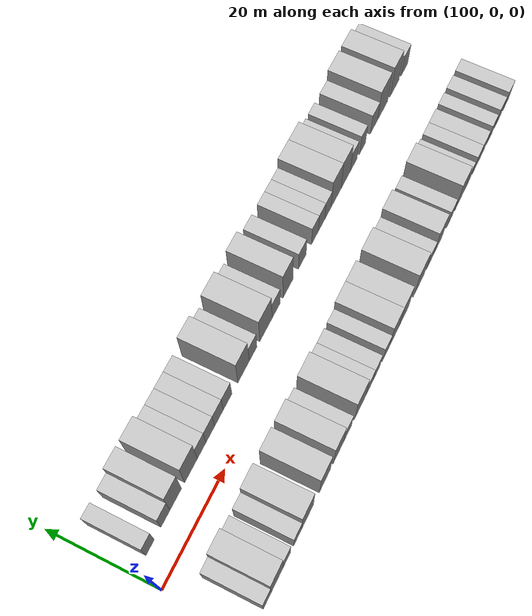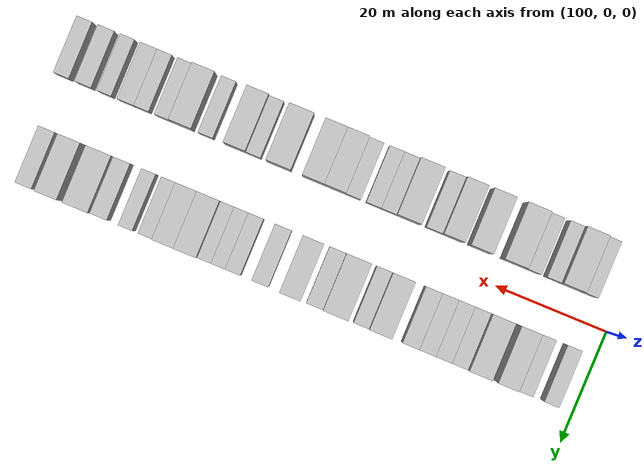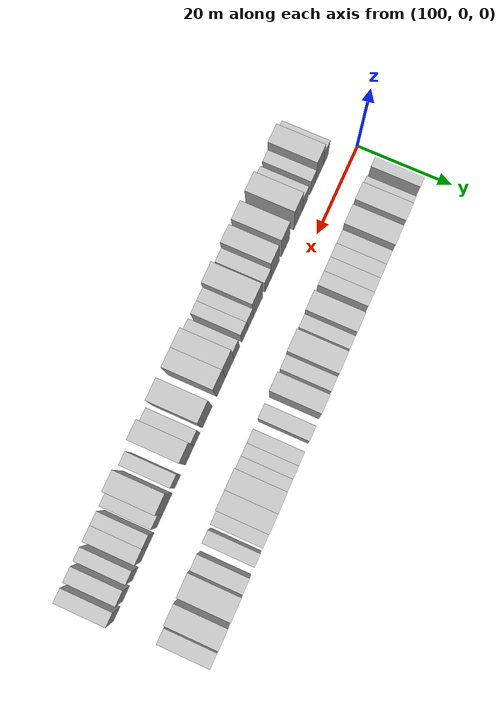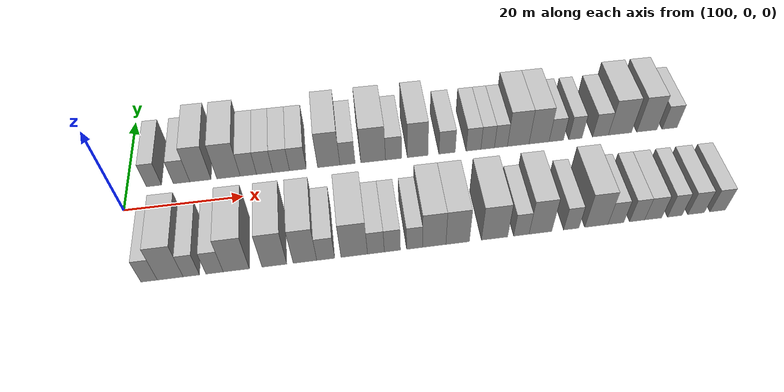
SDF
<sdf version="1.6">
 <world name="default">
  <model name="building_25">
   <static>1</static>
   <pose>104.6225 9.5000 0 0.000000 0.000000 1.570796</pose>
   <link name="link">
    <pose>0 0 3.00 0 0 0</pose>
    <collision name="collision"><geometry><box><size>10.0000 2.5924 6.0000</size></box></geometry></collision>
    <visual name="visual">
     <cast_shadows>0</cast_shadows>
     <geometry><box><size>10.0000 2.5924 6.0000</size></box></geometry>
     <material>
      <script>
       <uri>model://HANNAS_wall/materials/scripts</uri>
       <uri>model://HANNAS_wall/materials/textures</uri>
       <name>vrc/HANNAS_wall</name>
      </script>
     </material>
    </visual>
   </link>
  </model>
  <model name="building_26">
   <static>1</static>
   <pose>109.3335 9.5000 0 0.000000 0.000000 1.570796</pose>
   <link name="link">
    <pose>0 0 3.00 0 0 0</pose>
    <collision name="collision"><geometry><box><size>10.0000 2.8296 6.0000</size></box></geometry></collision>
    <visual name="visual">
     <cast_shadows>0</cast_shadows>
     <geometry><box><size>10.0000 2.8296 6.0000</size></box></geometry>
     <material>
      <script>
       <uri>model://HANNAS_wall/materials/scripts</uri>
       <uri>model://HANNAS_wall/materials/textures</uri>
       <name>vrc/HANNAS_wall</name>
      </script>
     </material>
    </visual>
   </link>
  </model>
  <model name="building_27">
   <static>1</static>
   <pose>112.5689 9.5000 0 0.000000 0.000000 1.570796</pose>
   <link name="link">
    <pose>0 0 4.50 0 0 0</pose>
    <collision name="collision"><geometry><box><size>10.0000 3.6413 9.0000</size></box></geometry></collision>
    <visual name="visual">
     <cast_shadows>0</cast_shadows>
     <geometry><box><size>10.0000 3.6413 9.0000</size></box></geometry>
     <material>
      <script>
       <uri>model://HANNAS_wall/materials/scripts</uri>
       <uri>model://HANNAS_wall/materials/textures</uri>
       <name>vrc/HANNAS_wall</name>
      </script>
     </material>
    </visual>
   </link>
  </model>
  <model name="building_28">
   <static>1</static>
   <pose>117.4091 9.5000 0 0.000000 0.000000 1.570796</pose>
   <link name="link">
    <pose>0 0 4.50 0 0 0</pose>
    <collision name="collision"><geometry><box><size>10.0000 4.0390 9.0000</size></box></geometry></collision>
    <visual name="visual">
     <cast_shadows>0</cast_shadows>
     <geometry><box><size>10.0000 4.0390 9.0000</size></box></geometry>
     <material>
      <script>
       <uri>model://HANNAS_wall/materials/scripts</uri>
       <uri>model://HANNAS_wall/materials/textures</uri>
       <name>vrc/HANNAS_wall</name>
      </script>
     </material>
    </visual>
   </link>
  </model>
  <model name="building_29">
   <static>1</static>
   <pose>120.8455 9.5000 0 0.000000 0.000000 1.570796</pose>
   <link name="link">
    <pose>0 0 3.00 0 0 0</pose>
    <collision name="collision"><geometry><box><size>10.0000 2.8339 6.0000</size></box></geometry></collision>
    <visual name="visual">
     <cast_shadows>0</cast_shadows>
     <geometry><box><size>10.0000 2.8339 6.0000</size></box></geometry>
     <material>
      <script>
       <uri>model://HANNAS_wall/materials/scripts</uri>
       <uri>model://HANNAS_wall/materials/textures</uri>
       <name>vrc/HANNAS_wall</name>
      </script>
     </material>
    </visual>
   </link>
  </model>
  <model name="building_30">
   <static>1</static>
   <pose>123.6905 9.5000 0 0.000000 0.000000 1.570796</pose>
   <link name="link">
    <pose>0 0 3.00 0 0 0</pose>
    <collision name="collision"><geometry><box><size>10.0000 2.8562 6.0000</size></box></geometry></collision>
    <visual name="visual">
     <cast_shadows>0</cast_shadows>
     <geometry><box><size>10.0000 2.8562 6.0000</size></box></geometry>
     <material>
      <script>
       <uri>model://HANNAS_wall/materials/scripts</uri>
       <uri>model://HANNAS_wall/materials/textures</uri>
       <name>vrc/HANNAS_wall</name>
      </script>
     </material>
    </visual>
   </link>
  </model>
  <model name="building_31">
   <static>1</static>
   <pose>126.5782 9.5000 0 0.000000 0.000000 1.570796</pose>
   <link name="link">
    <pose>0 0 3.00 0 0 0</pose>
    <collision name="collision"><geometry><box><size>10.0000 2.9191 6.0000</size></box></geometry></collision>
    <visual name="visual">
     <cast_shadows>0</cast_shadows>
     <geometry><box><size>10.0000 2.9191 6.0000</size></box></geometry>
     <material>
      <script>
       <uri>model://HANNAS_wall/materials/scripts</uri>
       <uri>model://HANNAS_wall/materials/textures</uri>
       <name>vrc/HANNAS_wall</name>
      </script>
     </material>
    </visual>
   </link>
  </model>
  <model name="building_32">
   <static>1</static>
   <pose>129.5099 9.5000 0 0.000000 0.000000 1.570796</pose>
   <link name="link">
    <pose>0 0 3.00 0 0 0</pose>
    <collision name="collision"><geometry><box><size>10.0000 2.9444 6.0000</size></box></geometry></collision>
    <visual name="visual">
     <cast_shadows>0</cast_shadows>
     <geometry><box><size>10.0000 2.9444 6.0000</size></box></geometry>
     <material>
      <script>
       <uri>model://HANNAS_wall/materials/scripts</uri>
       <uri>model://HANNAS_wall/materials/textures</uri>
       <name>vrc/HANNAS_wall</name>
      </script>
     </material>
    </visual>
   </link>
  </model>
  <model name="building_33">
   <static>1</static>
   <pose>134.9548 9.5000 0 0.000000 0.000000 1.570796</pose>
   <link name="link">
    <pose>0 0 4.50 0 0 0</pose>
    <collision name="collision"><geometry><box><size>10.0000 3.9455 9.0000</size></box></geometry></collision>
    <visual name="visual">
     <cast_shadows>0</cast_shadows>
     <geometry><box><size>10.0000 3.9455 9.0000</size></box></geometry>
     <material>
      <script>
       <uri>model://HANNAS_wall/materials/scripts</uri>
       <uri>model://HANNAS_wall/materials/textures</uri>
       <name>vrc/HANNAS_wall</name>
      </script>
     </material>
    </visual>
   </link>
  </model>
  <model name="building_34">
   <static>1</static>
   <pose>138.2891 9.5000 0 0.000000 0.000000 1.570796</pose>
   <link name="link">
    <pose>0 0 3.00 0 0 0</pose>
    <collision name="collision"><geometry><box><size>10.0000 2.7231 6.0000</size></box></geometry></collision>
    <visual name="visual">
     <cast_shadows>0</cast_shadows>
     <geometry><box><size>10.0000 2.7231 6.0000</size></box></geometry>
     <material>
      <script>
       <uri>model://HANNAS_wall/materials/scripts</uri>
       <uri>model://HANNAS_wall/materials/textures</uri>
       <name>vrc/HANNAS_wall</name>
      </script>
     </material>
    </visual>
   </link>
  </model>
  <model name="building_35">
   <static>1</static>
   <pose>142.8634 9.5000 0 0.000000 0.000000 1.570796</pose>
   <link name="link">
    <pose>0 0 4.50 0 0 0</pose>
    <collision name="collision"><geometry><box><size>10.0000 4.4256 9.0000</size></box></geometry></collision>
    <visual name="visual">
     <cast_shadows>0</cast_shadows>
     <geometry><box><size>10.0000 4.4256 9.0000</size></box></geometry>
     <material>
      <script>
       <uri>model://HANNAS_wall/materials/scripts</uri>
       <uri>model://HANNAS_wall/materials/textures</uri>
       <name>vrc/HANNAS_wall</name>
      </script>
     </material>
    </visual>
   </link>
  </model>
  <model name="building_36">
   <static>1</static>
   <pose>146.5519 9.5000 0 0.000000 0.000000 1.570796</pose>
   <link name="link">
    <pose>0 0 3.00 0 0 0</pose>
    <collision name="collision"><geometry><box><size>10.0000 2.9514 6.0000</size></box></geometry></collision>
    <visual name="visual">
     <cast_shadows>0</cast_shadows>
     <geometry><box><size>10.0000 2.9514 6.0000</size></box></geometry>
     <material>
      <script>
       <uri>model://HANNAS_wall/materials/scripts</uri>
       <uri>model://HANNAS_wall/materials/textures</uri>
       <name>vrc/HANNAS_wall</name>
      </script>
     </material>
    </visual>
   </link>
  </model>
  <model name="building_37">
   <static>1</static>
   <pose>150.8884 9.5000 0 0.000000 0.000000 1.570796</pose>
   <link name="link">
    <pose>0 0 4.50 0 0 0</pose>
    <collision name="collision"><geometry><box><size>10.0000 3.7215 9.0000</size></box></geometry></collision>
    <visual name="visual">
     <cast_shadows>0</cast_shadows>
     <geometry><box><size>10.0000 3.7215 9.0000</size></box></geometry>
     <material>
      <script>
       <uri>model://HANNAS_wall/materials/scripts</uri>
       <uri>model://HANNAS_wall/materials/textures</uri>
       <name>vrc/HANNAS_wall</name>
      </script>
     </material>
    </visual>
   </link>
  </model>
  <model name="building_38">
   <static>1</static>
   <pose>156.2390 9.5000 0 0.000000 0.000000 1.570796</pose>
   <link name="link">
    <pose>0 0 3.00 0 0 0</pose>
    <collision name="collision"><geometry><box><size>10.0000 2.9796 6.0000</size></box></geometry></collision>
    <visual name="visual">
     <cast_shadows>0</cast_shadows>
     <geometry><box><size>10.0000 2.9796 6.0000</size></box></geometry>
     <material>
      <script>
       <uri>model://HANNAS_wall/materials/scripts</uri>
       <uri>model://HANNAS_wall/materials/textures</uri>
       <name>vrc/HANNAS_wall</name>
      </script>
     </material>
    </visual>
   </link>
  </model>
  <model name="building_39">
   <static>1</static>
   <pose>161.0786 9.5000 0 0.000000 0.000000 1.570796</pose>
   <link name="link">
    <pose>0 0 3.00 0 0 0</pose>
    <collision name="collision"><geometry><box><size>10.0000 2.6996 6.0000</size></box></geometry></collision>
    <visual name="visual">
     <cast_shadows>0</cast_shadows>
     <geometry><box><size>10.0000 2.6996 6.0000</size></box></geometry>
     <material>
      <script>
       <uri>model://HANNAS_wall/materials/scripts</uri>
       <uri>model://HANNAS_wall/materials/textures</uri>
       <name>vrc/HANNAS_wall</name>
      </script>
     </material>
    </visual>
   </link>
  </model>
  <model name="building_40">
   <static>1</static>
   <pose>163.6793 9.5000 0 0.000000 0.000000 1.570796</pose>
   <link name="link">
    <pose>0 0 3.00 0 0 0</pose>
    <collision name="collision"><geometry><box><size>10.0000 2.5017 6.0000</size></box></geometry></collision>
    <visual name="visual">
     <cast_shadows>0</cast_shadows>
     <geometry><box><size>10.0000 2.5017 6.0000</size></box></geometry>
     <material>
      <script>
       <uri>model://HANNAS_wall/materials/scripts</uri>
       <uri>model://HANNAS_wall/materials/textures</uri>
       <name>vrc/HANNAS_wall</name>
      </script>
     </material>
    </visual>
   </link>
  </model>
  <model name="building_41">
   <static>1</static>
   <pose>166.1346 9.5000 0 0.000000 0.000000 1.570796</pose>
   <link name="link">
    <pose>0 0 3.00 0 0 0</pose>
    <collision name="collision"><geometry><box><size>10.0000 2.4091 6.0000</size></box></geometry></collision>
    <visual name="visual">
     <cast_shadows>0</cast_shadows>
     <geometry><box><size>10.0000 2.4091 6.0000</size></box></geometry>
     <material>
      <script>
       <uri>model://HANNAS_wall/materials/scripts</uri>
       <uri>model://HANNAS_wall/materials/textures</uri>
       <name>vrc/HANNAS_wall</name>
      </script>
     </material>
    </visual>
   </link>
  </model>
  <model name="building_42">
   <static>1</static>
   <pose>169.3497 9.5000 0 0.000000 0.000000 1.570796</pose>
   <link name="link">
    <pose>0 0 4.50 0 0 0</pose>
    <collision name="collision"><geometry><box><size>10.0000 4.0210 9.0000</size></box></geometry></collision>
    <visual name="visual">
     <cast_shadows>0</cast_shadows>
     <geometry><box><size>10.0000 4.0210 9.0000</size></box></geometry>
     <material>
      <script>
       <uri>model://HANNAS_wall/materials/scripts</uri>
       <uri>model://HANNAS_wall/materials/textures</uri>
       <name>vrc/HANNAS_wall</name>
      </script>
     </material>
    </visual>
   </link>
  </model>
  <model name="building_43">
   <static>1</static>
   <pose>173.2358 9.5000 0 0.000000 0.000000 1.570796</pose>
   <link name="link">
    <pose>0 0 4.50 0 0 0</pose>
    <collision name="collision"><geometry><box><size>10.0000 3.7513 9.0000</size></box></geometry></collision>
    <visual name="visual">
     <cast_shadows>0</cast_shadows>
     <geometry><box><size>10.0000 3.7513 9.0000</size></box></geometry>
     <material>
      <script>
       <uri>model://HANNAS_wall/materials/scripts</uri>
       <uri>model://HANNAS_wall/materials/textures</uri>
       <name>vrc/HANNAS_wall</name>
      </script>
     </material>
    </visual>
   </link>
  </model>
  <model name="building_44">
   <static>1</static>
   <pose>176.4698 9.5000 0 0.000000 0.000000 1.570796</pose>
   <link name="link">
    <pose>0 0 3.00 0 0 0</pose>
    <collision name="collision"><geometry><box><size>10.0000 2.7166 6.0000</size></box></geometry></collision>
    <visual name="visual">
     <cast_shadows>0</cast_shadows>
     <geometry><box><size>10.0000 2.7166 6.0000</size></box></geometry>
     <material>
      <script>
       <uri>model://HANNAS_wall/materials/scripts</uri>
       <uri>model://HANNAS_wall/materials/textures</uri>
       <name>vrc/HANNAS_wall</name>
      </script>
     </material>
    </visual>
   </link>
  </model>
  <model name="building_45">
   <static>1</static>
   <pose>180.0792 9.5000 0 0.000000 0.000000 1.570796</pose>
   <link name="link">
    <pose>0 0 3.00 0 0 0</pose>
    <collision name="collision"><geometry><box><size>10.0000 2.5023 6.0000</size></box></geometry></collision>
    <visual name="visual">
     <cast_shadows>0</cast_shadows>
     <geometry><box><size>10.0000 2.5023 6.0000</size></box></geometry>
     <material>
      <script>
       <uri>model://HANNAS_wall/materials/scripts</uri>
       <uri>model://HANNAS_wall/materials/textures</uri>
       <name>vrc/HANNAS_wall</name>
      </script>
     </material>
    </visual>
   </link>
  </model>
  <model name="building_46">
   <static>1</static>
   <pose>184.8301 9.5000 0 0.000000 0.000000 1.570796</pose>
   <link name="link">
    <pose>0 0 3.00 0 0 0</pose>
    <collision name="collision"><geometry><box><size>10.0000 2.9994 6.0000</size></box></geometry></collision>
    <visual name="visual">
     <cast_shadows>0</cast_shadows>
     <geometry><box><size>10.0000 2.9994 6.0000</size></box></geometry>
     <material>
      <script>
       <uri>model://HANNAS_wall/materials/scripts</uri>
       <uri>model://HANNAS_wall/materials/textures</uri>
       <name>vrc/HANNAS_wall</name>
      </script>
     </material>
    </visual>
   </link>
  </model>
  <model name="building_47">
   <static>1</static>
   <pose>188.5492 9.5000 0 0.000000 0.000000 1.570796</pose>
   <link name="link">
    <pose>0 0 4.50 0 0 0</pose>
    <collision name="collision"><geometry><box><size>10.0000 4.4389 9.0000</size></box></geometry></collision>
    <visual name="visual">
     <cast_shadows>0</cast_shadows>
     <geometry><box><size>10.0000 4.4389 9.0000</size></box></geometry>
     <material>
      <script>
       <uri>model://HANNAS_wall/materials/scripts</uri>
       <uri>model://HANNAS_wall/materials/textures</uri>
       <name>vrc/HANNAS_wall</name>
      </script>
     </material>
    </visual>
   </link>
  </model>
  <model name="building_48">
   <static>1</static>
   <pose>193.7207 9.5000 0 0.000000 0.000000 1.570796</pose>
   <link name="link">
    <pose>0 0 4.50 0 0 0</pose>
    <collision name="collision"><geometry><box><size>10.0000 3.9040 9.0000</size></box></geometry></collision>
    <visual name="visual">
     <cast_shadows>0</cast_shadows>
     <geometry><box><size>10.0000 3.9040 9.0000</size></box></geometry>
     <material>
      <script>
       <uri>model://HANNAS_wall/materials/scripts</uri>
       <uri>model://HANNAS_wall/materials/textures</uri>
       <name>vrc/HANNAS_wall</name>
      </script>
     </material>
    </visual>
   </link>
  </model>
  <model name="building_49">
   <static>1</static>
   <pose>198.1178 9.5000 0 0.000000 0.000000 1.570796</pose>
   <link name="link">
    <pose>0 0 3.00 0 0 0</pose>
    <collision name="collision"><geometry><box><size>10.0000 2.8902 6.0000</size></box></geometry></collision>
    <visual name="visual">
     <cast_shadows>0</cast_shadows>
     <geometry><box><size>10.0000 2.8902 6.0000</size></box></geometry>
     <material>
      <script>
       <uri>model://HANNAS_wall/materials/scripts</uri>
       <uri>model://HANNAS_wall/materials/textures</uri>
       <name>vrc/HANNAS_wall</name>
      </script>
     </material>
    </visual>
   </link>
  </model>
  <model name="building_76">
   <static>1</static>
   <pose>105.5069 -9.5000 0 0.000000 0.000000 1.570796</pose>
   <link name="link">
    <pose>0 0 3.00 0 0 0</pose>
    <collision name="collision"><geometry><box><size>10.0000 2.5278 6.0000</size></box></geometry></collision>
    <visual name="visual">
     <cast_shadows>0</cast_shadows>
     <geometry><box><size>10.0000 2.5278 6.0000</size></box></geometry>
     <material>
      <script>
       <uri>model://HANNAS_wall/materials/scripts</uri>
       <uri>model://HANNAS_wall/materials/textures</uri>
       <name>vrc/HANNAS_wall</name>
      </script>
     </material>
    </visual>
   </link>
  </model>
  <model name="building_77">
   <static>1</static>
   <pose>108.7551 -9.5000 0 0.000000 0.000000 1.570796</pose>
   <link name="link">
    <pose>0 0 4.50 0 0 0</pose>
    <collision name="collision"><geometry><box><size>10.0000 3.9686 9.0000</size></box></geometry></collision>
    <visual name="visual">
     <cast_shadows>0</cast_shadows>
     <geometry><box><size>10.0000 3.9686 9.0000</size></box></geometry>
     <material>
      <script>
       <uri>model://HANNAS_wall/materials/scripts</uri>
       <uri>model://HANNAS_wall/materials/textures</uri>
       <name>vrc/HANNAS_wall</name>
      </script>
     </material>
    </visual>
   </link>
  </model>
  <model name="building_78">
   <static>1</static>
   <pose>112.0042 -9.5000 0 0.000000 0.000000 1.570796</pose>
   <link name="link">
    <pose>0 0 3.00 0 0 0</pose>
    <collision name="collision"><geometry><box><size>10.0000 2.5296 6.0000</size></box></geometry></collision>
    <visual name="visual">
     <cast_shadows>0</cast_shadows>
     <geometry><box><size>10.0000 2.5296 6.0000</size></box></geometry>
     <material>
      <script>
       <uri>model://HANNAS_wall/materials/scripts</uri>
       <uri>model://HANNAS_wall/materials/textures</uri>
       <name>vrc/HANNAS_wall</name>
      </script>
     </material>
    </visual>
   </link>
  </model>
  <model name="building_79">
   <static>1</static>
   <pose>115.6198 -9.5000 0 0.000000 0.000000 1.570796</pose>
   <link name="link">
    <pose>0 0 3.00 0 0 0</pose>
    <collision name="collision"><geometry><box><size>10.0000 2.7018 6.0000</size></box></geometry></collision>
    <visual name="visual">
     <cast_shadows>0</cast_shadows>
     <geometry><box><size>10.0000 2.7018 6.0000</size></box></geometry>
     <material>
      <script>
       <uri>model://HANNAS_wall/materials/scripts</uri>
       <uri>model://HANNAS_wall/materials/textures</uri>
       <name>vrc/HANNAS_wall</name>
      </script>
     </material>
    </visual>
   </link>
  </model>
  <model name="building_80">
   <static>1</static>
   <pose>119.0149 -9.5000 0 0.000000 0.000000 1.570796</pose>
   <link name="link">
    <pose>0 0 4.50 0 0 0</pose>
    <collision name="collision"><geometry><box><size>10.0000 4.0883 9.0000</size></box></geometry></collision>
    <visual name="visual">
     <cast_shadows>0</cast_shadows>
     <geometry><box><size>10.0000 4.0883 9.0000</size></box></geometry>
     <material>
      <script>
       <uri>model://HANNAS_wall/materials/scripts</uri>
       <uri>model://HANNAS_wall/materials/textures</uri>
       <name>vrc/HANNAS_wall</name>
      </script>
     </material>
    </visual>
   </link>
  </model>
  <model name="building_81">
   <static>1</static>
   <pose>125.0220 -9.5000 0 0.000000 0.000000 1.570796</pose>
   <link name="link">
    <pose>0 0 4.50 0 0 0</pose>
    <collision name="collision"><geometry><box><size>10.0000 3.9259 9.0000</size></box></geometry></collision>
    <visual name="visual">
     <cast_shadows>0</cast_shadows>
     <geometry><box><size>10.0000 3.9259 9.0000</size></box></geometry>
     <material>
      <script>
       <uri>model://HANNAS_wall/materials/scripts</uri>
       <uri>model://HANNAS_wall/materials/textures</uri>
       <name>vrc/HANNAS_wall</name>
      </script>
     </material>
    </visual>
   </link>
  </model>
  <model name="building_82">
   <static>1</static>
   <pose>129.8663 -9.5000 0 0.000000 0.000000 1.570796</pose>
   <link name="link">
    <pose>0 0 4.50 0 0 0</pose>
    <collision name="collision"><geometry><box><size>10.0000 3.7628 9.0000</size></box></geometry></collision>
    <visual name="visual">
     <cast_shadows>0</cast_shadows>
     <geometry><box><size>10.0000 3.7628 9.0000</size></box></geometry>
     <material>
      <script>
       <uri>model://HANNAS_wall/materials/scripts</uri>
       <uri>model://HANNAS_wall/materials/textures</uri>
       <name>vrc/HANNAS_wall</name>
      </script>
     </material>
    </visual>
   </link>
  </model>
  <model name="building_83">
   <static>1</static>
   <pose>133.1902 -9.5000 0 0.000000 0.000000 1.570796</pose>
   <link name="link">
    <pose>0 0 3.00 0 0 0</pose>
    <collision name="collision"><geometry><box><size>10.0000 2.8849 6.0000</size></box></geometry></collision>
    <visual name="visual">
     <cast_shadows>0</cast_shadows>
     <geometry><box><size>10.0000 2.8849 6.0000</size></box></geometry>
     <material>
      <script>
       <uri>model://HANNAS_wall/materials/scripts</uri>
       <uri>model://HANNAS_wall/materials/textures</uri>
       <name>vrc/HANNAS_wall</name>
      </script>
     </material>
    </visual>
   </link>
  </model>
  <model name="building_84">
   <static>1</static>
   <pose>137.7690 -9.5000 0 0.000000 0.000000 1.570796</pose>
   <link name="link">
    <pose>0 0 4.50 0 0 0</pose>
    <collision name="collision"><geometry><box><size>10.0000 4.2726 9.0000</size></box></geometry></collision>
    <visual name="visual">
     <cast_shadows>0</cast_shadows>
     <geometry><box><size>10.0000 4.2726 9.0000</size></box></geometry>
     <material>
      <script>
       <uri>model://HANNAS_wall/materials/scripts</uri>
       <uri>model://HANNAS_wall/materials/textures</uri>
       <name>vrc/HANNAS_wall</name>
      </script>
     </material>
    </visual>
   </link>
  </model>
  <model name="building_85">
   <static>1</static>
   <pose>141.2699 -9.5000 0 0.000000 0.000000 1.570796</pose>
   <link name="link">
    <pose>0 0 3.00 0 0 0</pose>
    <collision name="collision"><geometry><box><size>10.0000 2.7291 6.0000</size></box></geometry></collision>
    <visual name="visual">
     <cast_shadows>0</cast_shadows>
     <geometry><box><size>10.0000 2.7291 6.0000</size></box></geometry>
     <material>
      <script>
       <uri>model://HANNAS_wall/materials/scripts</uri>
       <uri>model://HANNAS_wall/materials/textures</uri>
       <name>vrc/HANNAS_wall</name>
      </script>
     </material>
    </visual>
   </link>
  </model>
  <model name="building_86">
   <static>1</static>
   <pose>143.9550 -9.5000 0 0.000000 0.000000 1.570796</pose>
   <link name="link">
    <pose>0 0 3.00 0 0 0</pose>
    <collision name="collision"><geometry><box><size>10.0000 2.6411 6.0000</size></box></geometry></collision>
    <visual name="visual">
     <cast_shadows>0</cast_shadows>
     <geometry><box><size>10.0000 2.6411 6.0000</size></box></geometry>
     <material>
      <script>
       <uri>model://HANNAS_wall/materials/scripts</uri>
       <uri>model://HANNAS_wall/materials/textures</uri>
       <name>vrc/HANNAS_wall</name>
      </script>
     </material>
    </visual>
   </link>
  </model>
  <model name="building_87">
   <static>1</static>
   <pose>147.5731 -9.5000 0 0.000000 0.000000 1.570796</pose>
   <link name="link">
    <pose>0 0 3.00 0 0 0</pose>
    <collision name="collision"><geometry><box><size>10.0000 2.5953 6.0000</size></box></geometry></collision>
    <visual name="visual">
     <cast_shadows>0</cast_shadows>
     <geometry><box><size>10.0000 2.5953 6.0000</size></box></geometry>
     <material>
      <script>
       <uri>model://HANNAS_wall/materials/scripts</uri>
       <uri>model://HANNAS_wall/materials/textures</uri>
       <name>vrc/HANNAS_wall</name>
      </script>
     </material>
    </visual>
   </link>
  </model>
  <model name="building_88">
   <static>1</static>
   <pose>150.7990 -9.5000 0 0.000000 0.000000 1.570796</pose>
   <link name="link">
    <pose>0 0 4.50 0 0 0</pose>
    <collision name="collision"><geometry><box><size>10.0000 3.8564 9.0000</size></box></geometry></collision>
    <visual name="visual">
     <cast_shadows>0</cast_shadows>
     <geometry><box><size>10.0000 3.8564 9.0000</size></box></geometry>
     <material>
      <script>
       <uri>model://HANNAS_wall/materials/scripts</uri>
       <uri>model://HANNAS_wall/materials/textures</uri>
       <name>vrc/HANNAS_wall</name>
      </script>
     </material>
    </visual>
   </link>
  </model>
  <model name="building_89">
   <static>1</static>
   <pose>154.6775 -9.5000 0 0.000000 0.000000 1.570796</pose>
   <link name="link">
    <pose>0 0 4.50 0 0 0</pose>
    <collision name="collision"><geometry><box><size>10.0000 3.9007 9.0000</size></box></geometry></collision>
    <visual name="visual">
     <cast_shadows>0</cast_shadows>
     <geometry><box><size>10.0000 3.9007 9.0000</size></box></geometry>
     <material>
      <script>
       <uri>model://HANNAS_wall/materials/scripts</uri>
       <uri>model://HANNAS_wall/materials/textures</uri>
       <name>vrc/HANNAS_wall</name>
      </script>
     </material>
    </visual>
   </link>
  </model>
  <model name="building_90">
   <static>1</static>
   <pose>160.8264 -9.5000 0 0.000000 0.000000 1.570796</pose>
   <link name="link">
    <pose>0 0 4.50 0 0 0</pose>
    <collision name="collision"><geometry><box><size>10.0000 4.3971 9.0000</size></box></geometry></collision>
    <visual name="visual">
     <cast_shadows>0</cast_shadows>
     <geometry><box><size>10.0000 4.3971 9.0000</size></box></geometry>
     <material>
      <script>
       <uri>model://HANNAS_wall/materials/scripts</uri>
       <uri>model://HANNAS_wall/materials/textures</uri>
       <name>vrc/HANNAS_wall</name>
      </script>
     </material>
    </visual>
   </link>
  </model>
  <model name="building_91">
   <static>1</static>
   <pose>165.3212 -9.5000 0 0.000000 0.000000 1.570796</pose>
   <link name="link">
    <pose>0 0 3.00 0 0 0</pose>
    <collision name="collision"><geometry><box><size>10.0000 2.5927 6.0000</size></box></geometry></collision>
    <visual name="visual">
     <cast_shadows>0</cast_shadows>
     <geometry><box><size>10.0000 2.5927 6.0000</size></box></geometry>
     <material>
      <script>
       <uri>model://HANNAS_wall/materials/scripts</uri>
       <uri>model://HANNAS_wall/materials/textures</uri>
       <name>vrc/HANNAS_wall</name>
      </script>
     </material>
    </visual>
   </link>
  </model>
  <model name="building_92">
   <static>1</static>
   <pose>168.5476 -9.5000 0 0.000000 0.000000 1.570796</pose>
   <link name="link">
    <pose>0 0 4.50 0 0 0</pose>
    <collision name="collision"><geometry><box><size>10.0000 3.8601 9.0000</size></box></geometry></collision>
    <visual name="visual">
     <cast_shadows>0</cast_shadows>
     <geometry><box><size>10.0000 3.8601 9.0000</size></box></geometry>
     <material>
      <script>
       <uri>model://HANNAS_wall/materials/scripts</uri>
       <uri>model://HANNAS_wall/materials/textures</uri>
       <name>vrc/HANNAS_wall</name>
      </script>
     </material>
    </visual>
   </link>
  </model>
  <model name="building_93">
   <static>1</static>
   <pose>173.7870 -9.5000 0 0.000000 0.000000 1.570796</pose>
   <link name="link">
    <pose>0 0 3.00 0 0 0</pose>
    <collision name="collision"><geometry><box><size>10.0000 2.6187 6.0000</size></box></geometry></collision>
    <visual name="visual">
     <cast_shadows>0</cast_shadows>
     <geometry><box><size>10.0000 2.6187 6.0000</size></box></geometry>
     <material>
      <script>
       <uri>model://HANNAS_wall/materials/scripts</uri>
       <uri>model://HANNAS_wall/materials/textures</uri>
       <name>vrc/HANNAS_wall</name>
      </script>
     </material>
    </visual>
   </link>
  </model>
  <model name="building_94">
   <static>1</static>
   <pose>178.0956 -9.5000 0 0.000000 0.000000 1.570796</pose>
   <link name="link">
    <pose>0 0 4.50 0 0 0</pose>
    <collision name="collision"><geometry><box><size>10.0000 3.9985 9.0000</size></box></geometry></collision>
    <visual name="visual">
     <cast_shadows>0</cast_shadows>
     <geometry><box><size>10.0000 3.9985 9.0000</size></box></geometry>
     <material>
      <script>
       <uri>model://HANNAS_wall/materials/scripts</uri>
       <uri>model://HANNAS_wall/materials/textures</uri>
       <name>vrc/HANNAS_wall</name>
      </script>
     </material>
    </visual>
   </link>
  </model>
  <model name="building_95">
   <static>1</static>
   <pose>181.4590 -9.5000 0 0.000000 0.000000 1.570796</pose>
   <link name="link">
    <pose>0 0 3.00 0 0 0</pose>
    <collision name="collision"><geometry><box><size>10.0000 2.7283 6.0000</size></box></geometry></collision>
    <visual name="visual">
     <cast_shadows>0</cast_shadows>
     <geometry><box><size>10.0000 2.7283 6.0000</size></box></geometry>
     <material>
      <script>
       <uri>model://HANNAS_wall/materials/scripts</uri>
       <uri>model://HANNAS_wall/materials/textures</uri>
       <name>vrc/HANNAS_wall</name>
      </script>
     </material>
    </visual>
   </link>
  </model>
  <model name="building_96">
   <static>1</static>
   <pose>185.1301 -9.5000 0 0.000000 0.000000 1.570796</pose>
   <link name="link">
    <pose>0 0 3.00 0 0 0</pose>
    <collision name="collision"><geometry><box><size>10.0000 2.6139 6.0000</size></box></geometry></collision>
    <visual name="visual">
     <cast_shadows>0</cast_shadows>
     <geometry><box><size>10.0000 2.6139 6.0000</size></box></geometry>
     <material>
      <script>
       <uri>model://HANNAS_wall/materials/scripts</uri>
       <uri>model://HANNAS_wall/materials/textures</uri>
       <name>vrc/HANNAS_wall</name>
      </script>
     </material>
    </visual>
   </link>
  </model>
  <model name="building_97">
   <static>1</static>
   <pose>187.9360 -9.5000 0 0.000000 0.000000 1.570796</pose>
   <link name="link">
    <pose>0 0 3.00 0 0 0</pose>
    <collision name="collision"><geometry><box><size>10.0000 2.9979 6.0000</size></box></geometry></collision>
    <visual name="visual">
     <cast_shadows>0</cast_shadows>
     <geometry><box><size>10.0000 2.9979 6.0000</size></box></geometry>
     <material>
      <script>
       <uri>model://HANNAS_wall/materials/scripts</uri>
       <uri>model://HANNAS_wall/materials/textures</uri>
       <name>vrc/HANNAS_wall</name>
      </script>
     </material>
    </visual>
   </link>
  </model>
  <model name="building_98">
   <static>1</static>
   <pose>191.7147 -9.5000 0 0.000000 0.000000 1.570796</pose>
   <link name="link">
    <pose>0 0 3.00 0 0 0</pose>
    <collision name="collision"><geometry><box><size>10.0000 2.5595 6.0000</size></box></geometry></collision>
    <visual name="visual">
     <cast_shadows>0</cast_shadows>
     <geometry><box><size>10.0000 2.5595 6.0000</size></box></geometry>
     <material>
      <script>
       <uri>model://HANNAS_wall/materials/scripts</uri>
       <uri>model://HANNAS_wall/materials/textures</uri>
       <name>vrc/HANNAS_wall</name>
      </script>
     </material>
    </visual>
   </link>
  </model>
  <model name="building_99">
   <static>1</static>
   <pose>195.4592 -9.5000 0 0.000000 0.000000 1.570796</pose>
   <link name="link">
    <pose>0 0 3.00 0 0 0</pose>
    <collision name="collision"><geometry><box><size>10.0000 2.9295 6.0000</size></box></geometry></collision>
    <visual name="visual">
     <cast_shadows>0</cast_shadows>
     <geometry><box><size>10.0000 2.9295 6.0000</size></box></geometry>
     <material>
      <script>
       <uri>model://HANNAS_wall/materials/scripts</uri>
       <uri>model://HANNAS_wall/materials/textures</uri>
       <name>vrc/HANNAS_wall</name>
      </script>
     </material>
    </visual>
   </link>
  </model>
  <model name="building_100">
   <static>1</static>
   <pose>199.2880 -9.5000 0 0.000000 0.000000 1.570796</pose>
   <link name="link">
    <pose>0 0 3.00 0 0 0</pose>
    <collision name="collision"><geometry><box><size>10.0000 2.7281 6.0000</size></box></geometry></collision>
    <visual name="visual">
     <cast_shadows>0</cast_shadows>
     <geometry><box><size>10.0000 2.7281 6.0000</size></box></geometry>
     <material>
      <script>
       <uri>model://HANNAS_wall/materials/scripts</uri>
       <uri>model://HANNAS_wall/materials/textures</uri>
       <name>vrc/HANNAS_wall</name>
      </script>
     </material>
    </visual>
   </link>
  </model>
 </world>
</sdf>
